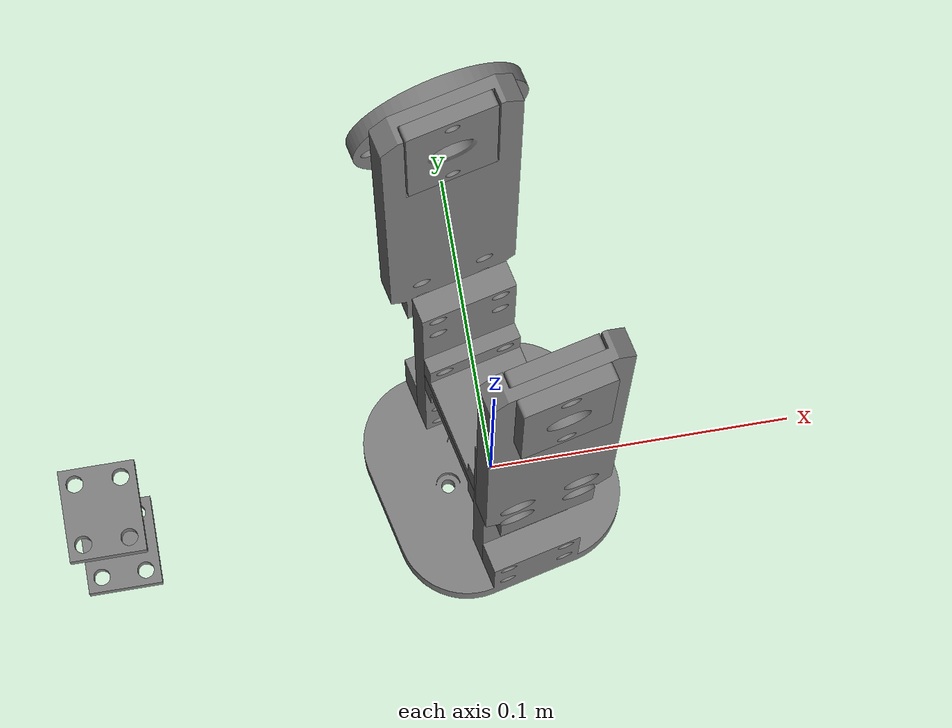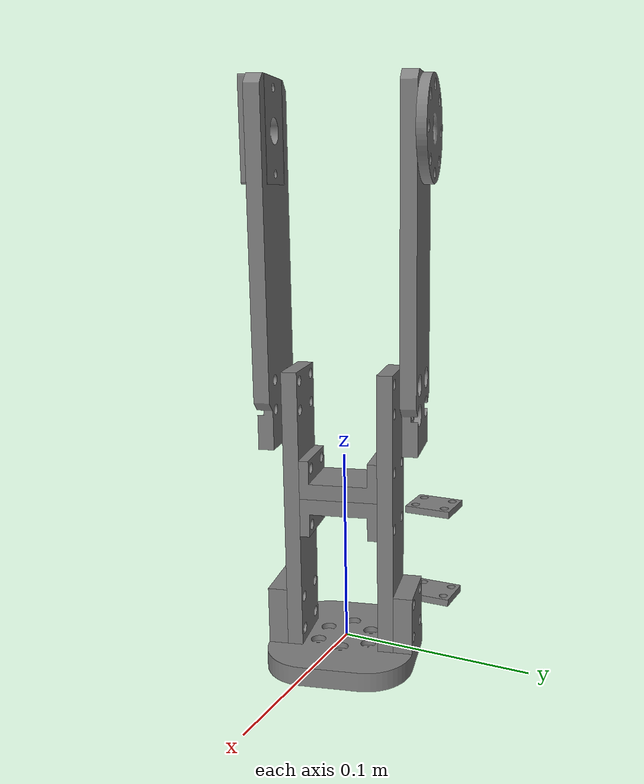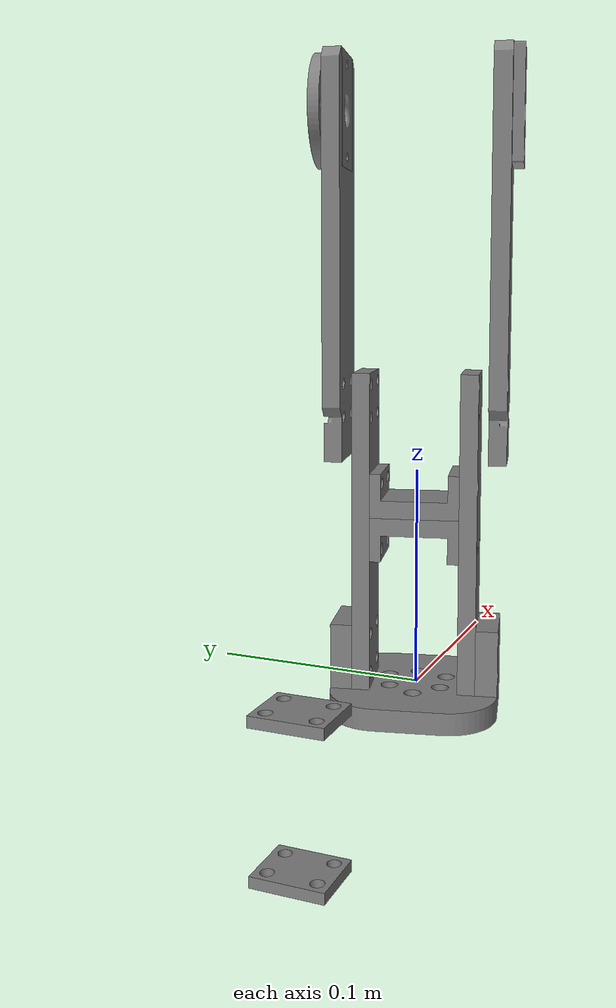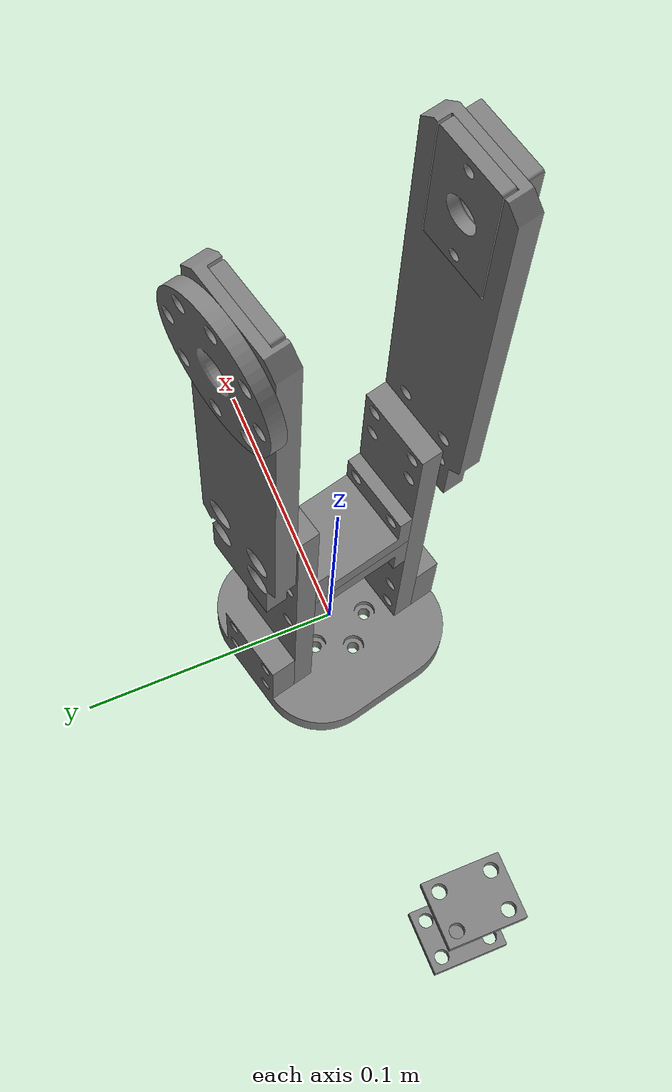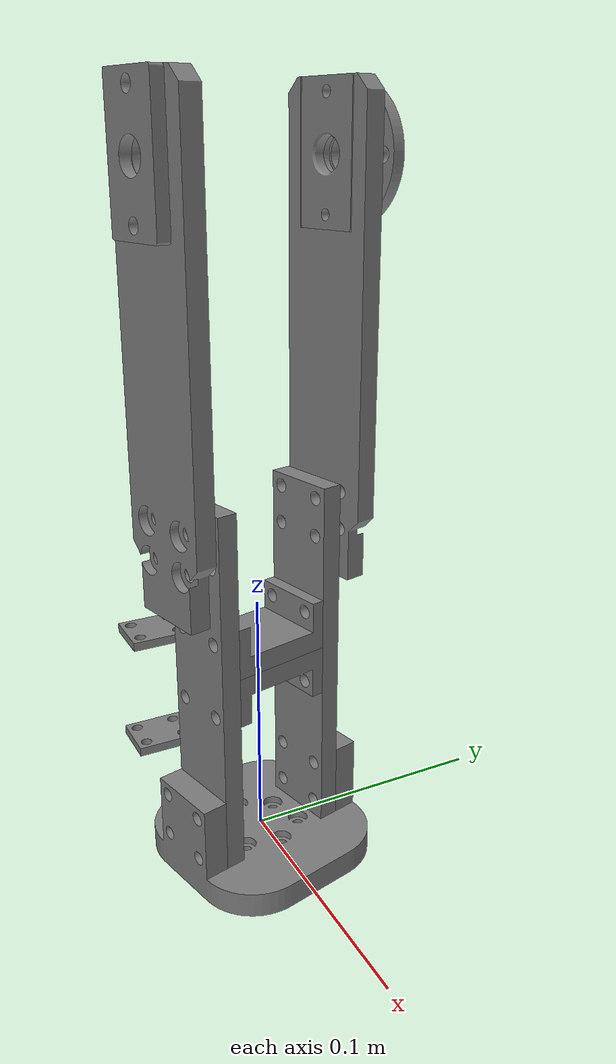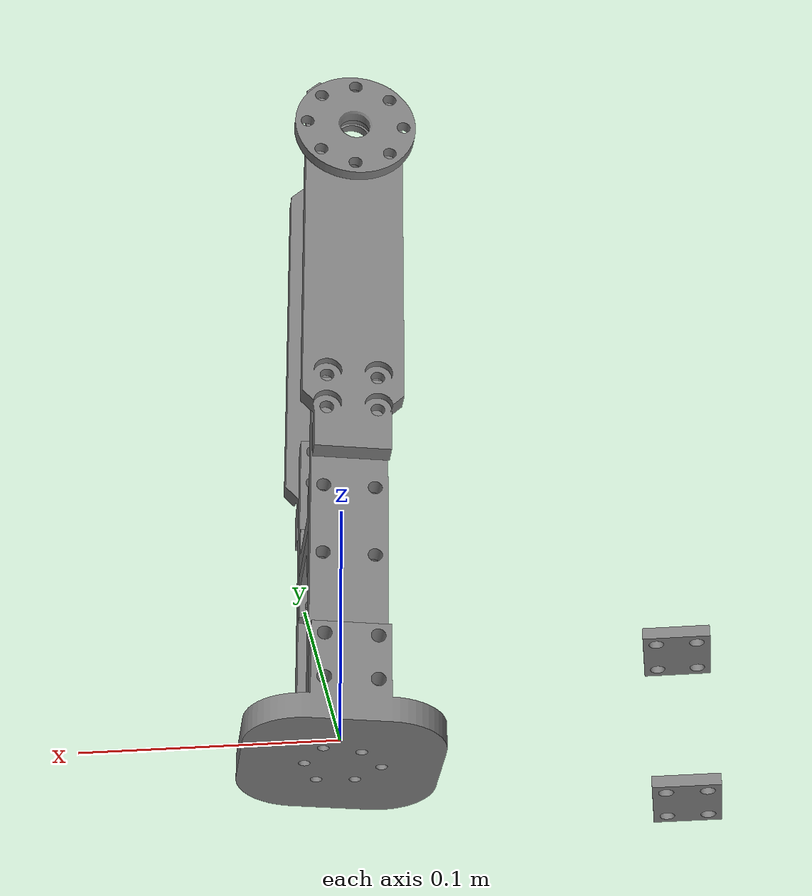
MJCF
<?xml version="1.0" encoding="UTF-8"?>
<mujoco>
<compiler meshdir="assets"/>
  <asset>
    <mesh file="t4__wu_fu_zhu_tui_ban_____qian_tui__t4__wu_fu_zhu_tui_ban__1__gang_xing_tui_bu_ce_mian_lian_jie_jian__1.stl"/>
    <mesh file="t4__wu_fu_zhu_tui_ban_____qian_tui__t4__wu_fu_zhu_tui_ban__1__gang_xing_tui_bu_ce_mian_lian_jie_jian__2.stl"/>
    <mesh file="t4__wu_fu_zhu_tui_ban_____qian_tui__t4__wu_fu_zhu_tui_ban__1__gang_xing_tui_bu_tan_xian_wei_lian_jie_jian__1.stl"/>
    <mesh file="t4__wu_fu_zhu_tui_ban_____qian_tui__t4__wu_fu_zhu_tui_ban__1__qian_lun_qian_cha_dian_pian__1.stl"/>
    <mesh file="t4__wu_fu_zhu_tui_ban_____qian_tui__t4__wu_fu_zhu_tui_ban__1__qian_lun_qian_cha_dian_pian__2.stl"/>
    <mesh file="t4__wu_fu_zhu_tui_ban_____qian_tui__t4__wu_fu_zhu_tui_ban__1__tan_xian_wei_qian_cha_gu_ding_jian__1.stl"/>
    <mesh file="t4__wu_fu_zhu_tui_ban_____qian_tui__t4__wu_fu_zhu_tui_ban__1__tan_xian_wei_qian_cha_gu_ding_jian__2.stl"/>
    <mesh file="t4__wu_fu_zhu_tui_ban_____qian_tui__t4__wu_fu_zhu_tui_ban__1__lun_gu_dian_ji_ce_mian_lian_jie_jian__1.stl"/>
    <mesh file="t4__wu_fu_zhu_tui_ban_____qian_tui__t4__wu_fu_zhu_tui_ban__1__lun_gu_dian_ji_ce_mian_lian_jie_jian__2.stl"/>
    <mesh file="t4__wu_fu_zhu_tui_ban_____qian_tui__t4__wu_fu_zhu_tui_ban__1__lun_gu_dian_ji_nei_ce_gu_ding_jian__1.stl"/>
    <mesh file="t4__wu_fu_zhu_tui_ban_____qian_tui__t4__wu_fu_zhu_tui_ban__1__lun_gu_dian_ji_nei_ce_gu_ding_jian__2.stl"/>
    <mesh file="t4__wu_fu_zhu_tui_ban_____qian_tui__t4__wu_fu_zhu_tui_ban__1__lun_gu_dian_ji_you_ce_gu_ding_jian__1.stl"/>
    <mesh file="t4__wu_fu_zhu_tui_ban_____qian_tui__t4__wu_fu_zhu_tui_ban__1__lun_gu_dian_ji_zuo_ce_gu_ding_jian__1.stl"/>
  </asset>

  <default>
  <default class="前腿_default">
  <geom contype="0" conaffinity="0"/>
  </default>
  </default>

  <worldbody>
  <body name="前腿_body" pos="0 0 0">
    <geom type="mesh" mesh="t4__wu_fu_zhu_tui_ban_____qian_tui__t4__wu_fu_zhu_tui_ban__1__gang_xing_tui_bu_ce_mian_lian_jie_jian__1" mass="0.0001" class="前腿_default"/>
    <geom type="mesh" mesh="t4__wu_fu_zhu_tui_ban_____qian_tui__t4__wu_fu_zhu_tui_ban__1__gang_xing_tui_bu_ce_mian_lian_jie_jian__2" mass="0.0001" class="前腿_default"/>
    <geom type="mesh" mesh="t4__wu_fu_zhu_tui_ban_____qian_tui__t4__wu_fu_zhu_tui_ban__1__gang_xing_tui_bu_tan_xian_wei_lian_jie_jian__1" mass="0.0001" class="前腿_default"/>
    <geom type="mesh" mesh="t4__wu_fu_zhu_tui_ban_____qian_tui__t4__wu_fu_zhu_tui_ban__1__qian_lun_qian_cha_dian_pian__1" mass="0.0001" class="前腿_default"/>
    <geom type="mesh" mesh="t4__wu_fu_zhu_tui_ban_____qian_tui__t4__wu_fu_zhu_tui_ban__1__qian_lun_qian_cha_dian_pian__2" mass="0.0001" class="前腿_default"/>
    <geom type="mesh" mesh="t4__wu_fu_zhu_tui_ban_____qian_tui__t4__wu_fu_zhu_tui_ban__1__tan_xian_wei_qian_cha_gu_ding_jian__1" mass="0.0001" class="前腿_default"/>
    <geom type="mesh" mesh="t4__wu_fu_zhu_tui_ban_____qian_tui__t4__wu_fu_zhu_tui_ban__1__tan_xian_wei_qian_cha_gu_ding_jian__2" mass="0.0001" class="前腿_default"/>
    <geom type="mesh" mesh="t4__wu_fu_zhu_tui_ban_____qian_tui__t4__wu_fu_zhu_tui_ban__1__lun_gu_dian_ji_ce_mian_lian_jie_jian__1" mass="0.0001" class="前腿_default"/>
    <geom type="mesh" mesh="t4__wu_fu_zhu_tui_ban_____qian_tui__t4__wu_fu_zhu_tui_ban__1__lun_gu_dian_ji_ce_mian_lian_jie_jian__2" mass="0.0001" class="前腿_default"/>
    <geom type="mesh" mesh="t4__wu_fu_zhu_tui_ban_____qian_tui__t4__wu_fu_zhu_tui_ban__1__lun_gu_dian_ji_nei_ce_gu_ding_jian__1" mass="0.0001" class="前腿_default"/>
    <geom type="mesh" mesh="t4__wu_fu_zhu_tui_ban_____qian_tui__t4__wu_fu_zhu_tui_ban__1__lun_gu_dian_ji_nei_ce_gu_ding_jian__2" mass="0.0001" class="前腿_default"/>
    <geom type="mesh" mesh="t4__wu_fu_zhu_tui_ban_____qian_tui__t4__wu_fu_zhu_tui_ban__1__lun_gu_dian_ji_you_ce_gu_ding_jian__1" mass="0.0001" class="前腿_default"/>
    <geom type="mesh" mesh="t4__wu_fu_zhu_tui_ban_____qian_tui__t4__wu_fu_zhu_tui_ban__1__lun_gu_dian_ji_zuo_ce_gu_ding_jian__1" mass="0.5770" class="前腿_default"/>
  </body>
  </worldbody>
</mujoco>
